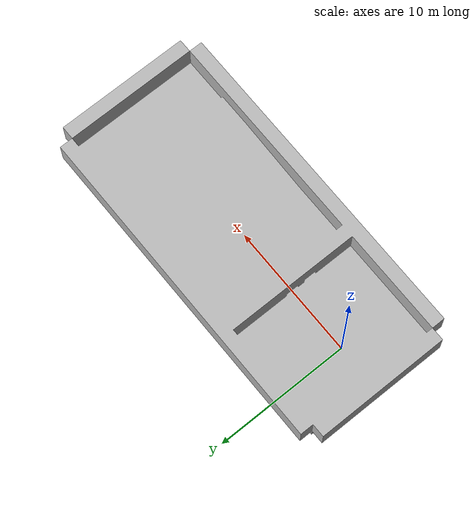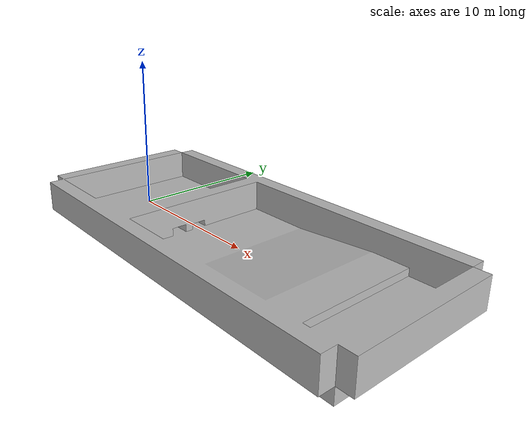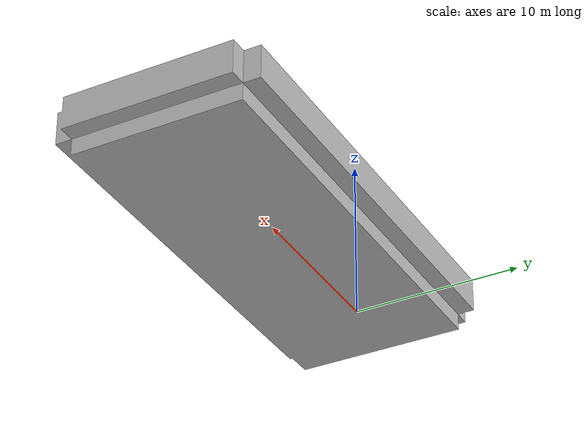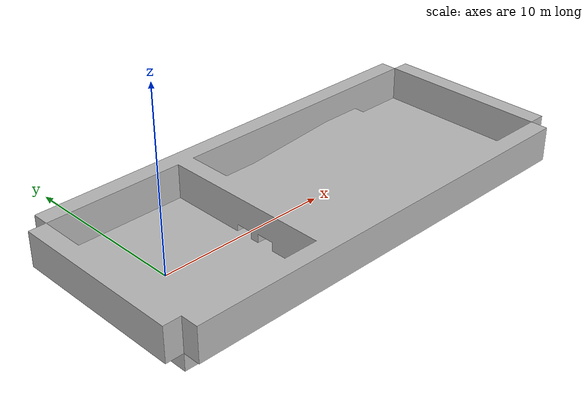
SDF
<?xml version="1.0" ?>
<sdf version="1.5">
  <model name="scenario_3">
    <pose>0 0 0 0 0 0</pose>
    <static>true</static>
    <link name="body">
      <visual name="visual">
        <geometry>
          <mesh><uri>model://scenario_3/media/scenario_3.dae</uri></mesh>
        </geometry>
      </visual>
      <collision name="collision">
        <geometry>
          <mesh><uri>model://scenario_3/media/scenario_3.dae</uri></mesh>
        </geometry>
      </collision>
    </link>
  </model>
</sdf>
